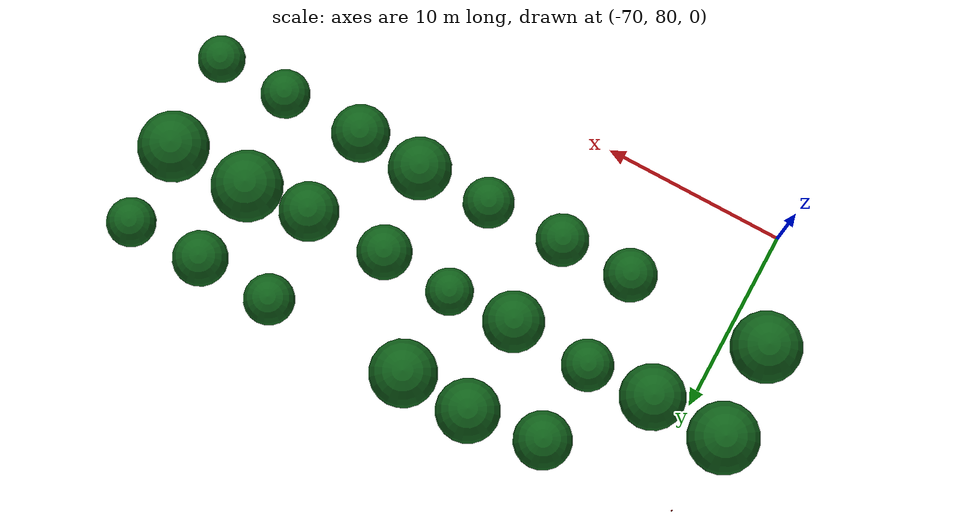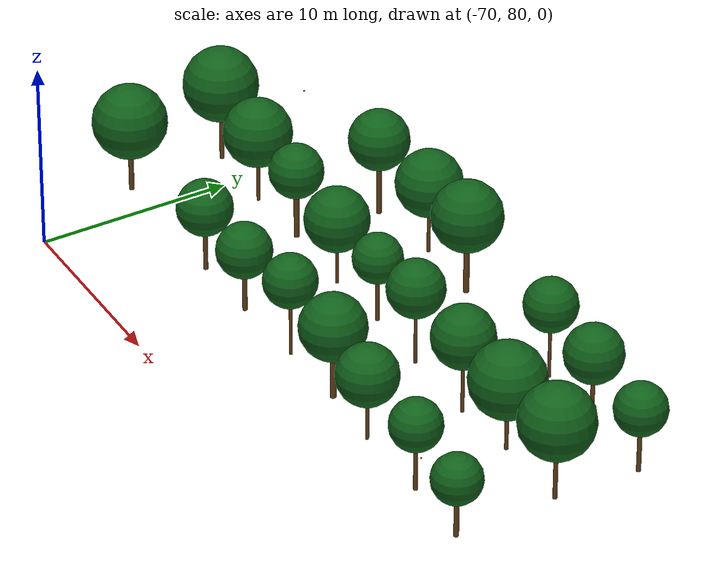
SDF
<sdf version="1.9">
 <world name="cheongsong_orchard">
  <model name="apple_tree_2093">
   <static>true</static>
   <pose>-72.01 85.86 0 0 0 0</pose>
   <link name="link">
    <collision name="trunk_col">
     <pose>0 0 1.06 0 0 0</pose>
     <geometry><cylinder><radius>0.131</radius><length>2.12</length></cylinder></geometry>
    </collision>
    <visual name="trunk_vis">
     <pose>0 0 1.06 0 0 0</pose>
     <geometry><cylinder><radius>0.131</radius><length>2.12</length></cylinder></geometry>
     <material><ambient>0.35 0.22 0.08 1</ambient><diffuse>0.45 0.30 0.12 1</diffuse></material>
    </visual>
    <collision name="canopy_col">
     <pose>0 0 4.02 0 0 0</pose>
     <geometry><sphere><radius>1.90</radius></sphere></geometry>
    </collision>
    <visual name="canopy_vis">
     <pose>0 0 4.02 0 0 0</pose>
     <geometry><sphere><radius>1.90</radius></sphere></geometry>
     <material><ambient>0.04 0.28 0.06 1</ambient><diffuse>0.06 0.38 0.10 1</diffuse></material>
    </visual>
   </link>
  </model>
  <model name="apple_tree_2095">
   <static>true</static>
   <pose>-64.10 85.81 0 0 0 0</pose>
   <link name="link">
    <collision name="trunk_col">
     <pose>0 0 1.09 0 0 0</pose>
     <geometry><cylinder><radius>0.114</radius><length>2.19</length></cylinder></geometry>
    </collision>
    <visual name="trunk_vis">
     <pose>0 0 1.09 0 0 0</pose>
     <geometry><cylinder><radius>0.114</radius><length>2.19</length></cylinder></geometry>
     <material><ambient>0.35 0.22 0.08 1</ambient><diffuse>0.45 0.30 0.12 1</diffuse></material>
    </visual>
    <collision name="canopy_col">
     <pose>0 0 3.61 0 0 0</pose>
     <geometry><sphere><radius>1.42</radius></sphere></geometry>
    </collision>
    <visual name="canopy_vis">
     <pose>0 0 3.61 0 0 0</pose>
     <geometry><sphere><radius>1.42</radius></sphere></geometry>
     <material><ambient>0.04 0.28 0.06 1</ambient><diffuse>0.06 0.38 0.10 1</diffuse></material>
    </visual>
   </link>
  </model>
  <model name="apple_tree_2096">
   <static>true</static>
   <pose>-60.15 85.83 0 0 0 0</pose>
   <link name="link">
    <collision name="trunk_col">
     <pose>0 0 1.05 0 0 0</pose>
     <geometry><cylinder><radius>0.122</radius><length>2.09</length></cylinder></geometry>
    </collision>
    <visual name="trunk_vis">
     <pose>0 0 1.05 0 0 0</pose>
     <geometry><cylinder><radius>0.122</radius><length>2.09</length></cylinder></geometry>
     <material><ambient>0.35 0.22 0.08 1</ambient><diffuse>0.45 0.30 0.12 1</diffuse></material>
    </visual>
    <collision name="canopy_col">
     <pose>0 0 3.49 0 0 0</pose>
     <geometry><sphere><radius>1.40</radius></sphere></geometry>
    </collision>
    <visual name="canopy_vis">
     <pose>0 0 3.49 0 0 0</pose>
     <geometry><sphere><radius>1.40</radius></sphere></geometry>
     <material><ambient>0.04 0.28 0.06 1</ambient><diffuse>0.06 0.38 0.10 1</diffuse></material>
    </visual>
   </link>
  </model>
  <model name="apple_tree_2097">
   <static>true</static>
   <pose>-55.91 86.00 0 0 0 0</pose>
   <link name="link">
    <collision name="trunk_col">
     <pose>0 0 1.45 0 0 0</pose>
     <geometry><cylinder><radius>0.080</radius><length>2.91</length></cylinder></geometry>
    </collision>
    <visual name="trunk_vis">
     <pose>0 0 1.45 0 0 0</pose>
     <geometry><cylinder><radius>0.080</radius><length>2.91</length></cylinder></geometry>
     <material><ambient>0.35 0.22 0.08 1</ambient><diffuse>0.45 0.30 0.12 1</diffuse></material>
    </visual>
    <collision name="canopy_col">
     <pose>0 0 4.26 0 0 0</pose>
     <geometry><sphere><radius>1.35</radius></sphere></geometry>
    </collision>
    <visual name="canopy_vis">
     <pose>0 0 4.26 0 0 0</pose>
     <geometry><sphere><radius>1.35</radius></sphere></geometry>
     <material><ambient>0.04 0.28 0.06 1</ambient><diffuse>0.06 0.38 0.10 1</diffuse></material>
    </visual>
   </link>
  </model>
  <model name="apple_tree_2098">
   <static>true</static>
   <pose>-51.93 86.07 0 0 0 0</pose>
   <link name="link">
    <collision name="trunk_col">
     <pose>0 0 1.20 0 0 0</pose>
     <geometry><cylinder><radius>0.149</radius><length>2.39</length></cylinder></geometry>
    </collision>
    <visual name="trunk_vis">
     <pose>0 0 1.20 0 0 0</pose>
     <geometry><cylinder><radius>0.149</radius><length>2.39</length></cylinder></geometry>
     <material><ambient>0.35 0.22 0.08 1</ambient><diffuse>0.45 0.30 0.12 1</diffuse></material>
    </visual>
    <collision name="canopy_col">
     <pose>0 0 4.06 0 0 0</pose>
     <geometry><sphere><radius>1.67</radius></sphere></geometry>
    </collision>
    <visual name="canopy_vis">
     <pose>0 0 4.06 0 0 0</pose>
     <geometry><sphere><radius>1.67</radius></sphere></geometry>
     <material><ambient>0.04 0.28 0.06 1</ambient><diffuse>0.06 0.38 0.10 1</diffuse></material>
    </visual>
   </link>
  </model>
  <model name="apple_tree_2099">
   <static>true</static>
   <pose>-48.32 85.85 0 0 0 0</pose>
   <link name="link">
    <collision name="trunk_col">
     <pose>0 0 1.07 0 0 0</pose>
     <geometry><cylinder><radius>0.084</radius><length>2.14</length></cylinder></geometry>
    </collision>
    <visual name="trunk_vis">
     <pose>0 0 1.07 0 0 0</pose>
     <geometry><cylinder><radius>0.084</radius><length>2.14</length></cylinder></geometry>
     <material><ambient>0.35 0.22 0.08 1</ambient><diffuse>0.45 0.30 0.12 1</diffuse></material>
    </visual>
    <collision name="canopy_col">
     <pose>0 0 3.69 0 0 0</pose>
     <geometry><sphere><radius>1.54</radius></sphere></geometry>
    </collision>
    <visual name="canopy_vis">
     <pose>0 0 3.69 0 0 0</pose>
     <geometry><sphere><radius>1.54</radius></sphere></geometry>
     <material><ambient>0.04 0.28 0.06 1</ambient><diffuse>0.06 0.38 0.10 1</diffuse></material>
    </visual>
   </link>
  </model>
  <model name="apple_tree_2100">
   <static>true</static>
   <pose>-43.90 85.87 0 0 0 0</pose>
   <link name="link">
    <collision name="trunk_col">
     <pose>0 0 1.21 0 0 0</pose>
     <geometry><cylinder><radius>0.107</radius><length>2.41</length></cylinder></geometry>
    </collision>
    <visual name="trunk_vis">
     <pose>0 0 1.21 0 0 0</pose>
     <geometry><cylinder><radius>0.107</radius><length>2.41</length></cylinder></geometry>
     <material><ambient>0.35 0.22 0.08 1</ambient><diffuse>0.45 0.30 0.12 1</diffuse></material>
    </visual>
    <collision name="canopy_col">
     <pose>0 0 3.71 0 0 0</pose>
     <geometry><sphere><radius>1.30</radius></sphere></geometry>
    </collision>
    <visual name="canopy_vis">
     <pose>0 0 3.71 0 0 0</pose>
     <geometry><sphere><radius>1.30</radius></sphere></geometry>
     <material><ambient>0.04 0.28 0.06 1</ambient><diffuse>0.06 0.38 0.10 1</diffuse></material>
    </visual>
   </link>
  </model>
  <model name="apple_tree_2101">
   <static>true</static>
   <pose>-40.04 85.76 0 0 0 0</pose>
   <link name="link">
    <collision name="trunk_col">
     <pose>0 0 0.99 0 0 0</pose>
     <geometry><cylinder><radius>0.126</radius><length>1.99</length></cylinder></geometry>
    </collision>
    <visual name="trunk_vis">
     <pose>0 0 0.99 0 0 0</pose>
     <geometry><cylinder><radius>0.126</radius><length>1.99</length></cylinder></geometry>
     <material><ambient>0.35 0.22 0.08 1</ambient><diffuse>0.45 0.30 0.12 1</diffuse></material>
    </visual>
    <collision name="canopy_col">
     <pose>0 0 3.24 0 0 0</pose>
     <geometry><sphere><radius>1.25</radius></sphere></geometry>
    </collision>
    <visual name="canopy_vis">
     <pose>0 0 3.24 0 0 0</pose>
     <geometry><sphere><radius>1.25</radius></sphere></geometry>
     <material><ambient>0.04 0.28 0.06 1</ambient><diffuse>0.06 0.38 0.10 1</diffuse></material>
    </visual>
   </link>
  </model>
  <model name="apple_tree_2149">
   <static>true</static>
   <pose>-72.21 91.08 0 0 0 0</pose>
   <link name="link">
    <collision name="trunk_col">
     <pose>0 0 1.26 0 0 0</pose>
     <geometry><cylinder><radius>0.118</radius><length>2.51</length></cylinder></geometry>
    </collision>
    <visual name="trunk_vis">
     <pose>0 0 1.26 0 0 0</pose>
     <geometry><cylinder><radius>0.118</radius><length>2.51</length></cylinder></geometry>
     <material><ambient>0.35 0.22 0.08 1</ambient><diffuse>0.45 0.30 0.12 1</diffuse></material>
    </visual>
    <collision name="canopy_col">
     <pose>0 0 4.43 0 0 0</pose>
     <geometry><sphere><radius>1.92</radius></sphere></geometry>
    </collision>
    <visual name="canopy_vis">
     <pose>0 0 4.43 0 0 0</pose>
     <geometry><sphere><radius>1.92</radius></sphere></geometry>
     <material><ambient>0.04 0.28 0.06 1</ambient><diffuse>0.06 0.38 0.10 1</diffuse></material>
    </visual>
   </link>
  </model>
  <model name="apple_tree_2150">
   <static>true</static>
   <pose>-68.04 90.89 0 0 0 0</pose>
   <link name="link">
    <collision name="trunk_col">
     <pose>0 0 1.13 0 0 0</pose>
     <geometry><cylinder><radius>0.091</radius><length>2.27</length></cylinder></geometry>
    </collision>
    <visual name="trunk_vis">
     <pose>0 0 1.13 0 0 0</pose>
     <geometry><cylinder><radius>0.091</radius><length>2.27</length></cylinder></geometry>
     <material><ambient>0.35 0.22 0.08 1</ambient><diffuse>0.45 0.30 0.12 1</diffuse></material>
    </visual>
    <collision name="canopy_col">
     <pose>0 0 4.01 0 0 0</pose>
     <geometry><sphere><radius>1.75</radius></sphere></geometry>
    </collision>
    <visual name="canopy_vis">
     <pose>0 0 4.01 0 0 0</pose>
     <geometry><sphere><radius>1.75</radius></sphere></geometry>
     <material><ambient>0.04 0.28 0.06 1</ambient><diffuse>0.06 0.38 0.10 1</diffuse></material>
    </visual>
   </link>
  </model>
  <model name="apple_tree_2151">
   <static>true</static>
   <pose>-64.33 91.00 0 0 0 0</pose>
   <link name="link">
    <collision name="trunk_col">
     <pose>0 0 1.25 0 0 0</pose>
     <geometry><cylinder><radius>0.139</radius><length>2.49</length></cylinder></geometry>
    </collision>
    <visual name="trunk_vis">
     <pose>0 0 1.25 0 0 0</pose>
     <geometry><cylinder><radius>0.139</radius><length>2.49</length></cylinder></geometry>
     <material><ambient>0.35 0.22 0.08 1</ambient><diffuse>0.45 0.30 0.12 1</diffuse></material>
    </visual>
    <collision name="canopy_col">
     <pose>0 0 3.87 0 0 0</pose>
     <geometry><sphere><radius>1.38</radius></sphere></geometry>
    </collision>
    <visual name="canopy_vis">
     <pose>0 0 3.87 0 0 0</pose>
     <geometry><sphere><radius>1.38</radius></sphere></geometry>
     <material><ambient>0.04 0.28 0.06 1</ambient><diffuse>0.06 0.38 0.10 1</diffuse></material>
    </visual>
   </link>
  </model>
  <model name="apple_tree_2152">
   <static>true</static>
   <pose>-59.92 90.79 0 0 0 0</pose>
   <link name="link">
    <collision name="trunk_col">
     <pose>0 0 1.05 0 0 0</pose>
     <geometry><cylinder><radius>0.087</radius><length>2.10</length></cylinder></geometry>
    </collision>
    <visual name="trunk_vis">
     <pose>0 0 1.05 0 0 0</pose>
     <geometry><cylinder><radius>0.087</radius><length>2.10</length></cylinder></geometry>
     <material><ambient>0.35 0.22 0.08 1</ambient><diffuse>0.45 0.30 0.12 1</diffuse></material>
    </visual>
    <collision name="canopy_col">
     <pose>0 0 3.73 0 0 0</pose>
     <geometry><sphere><radius>1.63</radius></sphere></geometry>
    </collision>
    <visual name="canopy_vis">
     <pose>0 0 3.73 0 0 0</pose>
     <geometry><sphere><radius>1.63</radius></sphere></geometry>
     <material><ambient>0.04 0.28 0.06 1</ambient><diffuse>0.06 0.38 0.10 1</diffuse></material>
    </visual>
   </link>
  </model>
  <model name="apple_tree_2153">
   <static>true</static>
   <pose>-56.27 90.96 0 0 0 0</pose>
   <link name="link">
    <collision name="trunk_col">
     <pose>0 0 1.18 0 0 0</pose>
     <geometry><cylinder><radius>0.103</radius><length>2.36</length></cylinder></geometry>
    </collision>
    <visual name="trunk_vis">
     <pose>0 0 1.18 0 0 0</pose>
     <geometry><cylinder><radius>0.103</radius><length>2.36</length></cylinder></geometry>
     <material><ambient>0.35 0.22 0.08 1</ambient><diffuse>0.45 0.30 0.12 1</diffuse></material>
    </visual>
    <collision name="canopy_col">
     <pose>0 0 3.62 0 0 0</pose>
     <geometry><sphere><radius>1.26</radius></sphere></geometry>
    </collision>
    <visual name="canopy_vis">
     <pose>0 0 3.62 0 0 0</pose>
     <geometry><sphere><radius>1.26</radius></sphere></geometry>
     <material><ambient>0.04 0.28 0.06 1</ambient><diffuse>0.06 0.38 0.10 1</diffuse></material>
    </visual>
   </link>
  </model>
  <model name="apple_tree_2154">
   <static>true</static>
   <pose>-52.39 90.80 0 0 0 0</pose>
   <link name="link">
    <collision name="trunk_col">
     <pose>0 0 1.43 0 0 0</pose>
     <geometry><cylinder><radius>0.085</radius><length>2.86</length></cylinder></geometry>
    </collision>
    <visual name="trunk_vis">
     <pose>0 0 1.43 0 0 0</pose>
     <geometry><cylinder><radius>0.085</radius><length>2.86</length></cylinder></geometry>
     <material><ambient>0.35 0.22 0.08 1</ambient><diffuse>0.45 0.30 0.12 1</diffuse></material>
    </visual>
    <collision name="canopy_col">
     <pose>0 0 4.31 0 0 0</pose>
     <geometry><sphere><radius>1.45</radius></sphere></geometry>
    </collision>
    <visual name="canopy_vis">
     <pose>0 0 4.31 0 0 0</pose>
     <geometry><sphere><radius>1.45</radius></sphere></geometry>
     <material><ambient>0.04 0.28 0.06 1</ambient><diffuse>0.06 0.38 0.10 1</diffuse></material>
    </visual>
   </link>
  </model>
  <model name="apple_tree_2155">
   <static>true</static>
   <pose>-47.96 90.77 0 0 0 0</pose>
   <link name="link">
    <collision name="trunk_col">
     <pose>0 0 1.37 0 0 0</pose>
     <geometry><cylinder><radius>0.091</radius><length>2.74</length></cylinder></geometry>
    </collision>
    <visual name="trunk_vis">
     <pose>0 0 1.37 0 0 0</pose>
     <geometry><cylinder><radius>0.091</radius><length>2.74</length></cylinder></geometry>
     <material><ambient>0.35 0.22 0.08 1</ambient><diffuse>0.45 0.30 0.12 1</diffuse></material>
    </visual>
    <collision name="canopy_col">
     <pose>0 0 4.32 0 0 0</pose>
     <geometry><sphere><radius>1.58</radius></sphere></geometry>
    </collision>
    <visual name="canopy_vis">
     <pose>0 0 4.32 0 0 0</pose>
     <geometry><sphere><radius>1.58</radius></sphere></geometry>
     <material><ambient>0.04 0.28 0.06 1</ambient><diffuse>0.06 0.38 0.10 1</diffuse></material>
    </visual>
   </link>
  </model>
  <model name="apple_tree_2156">
   <static>true</static>
   <pose>-44.47 91.07 0 0 0 0</pose>
   <link name="link">
    <collision name="trunk_col">
     <pose>0 0 1.03 0 0 0</pose>
     <geometry><cylinder><radius>0.096</radius><length>2.07</length></cylinder></geometry>
    </collision>
    <visual name="trunk_vis">
     <pose>0 0 1.03 0 0 0</pose>
     <geometry><cylinder><radius>0.096</radius><length>2.07</length></cylinder></geometry>
     <material><ambient>0.35 0.22 0.08 1</ambient><diffuse>0.45 0.30 0.12 1</diffuse></material>
    </visual>
    <collision name="canopy_col">
     <pose>0 0 3.97 0 0 0</pose>
     <geometry><sphere><radius>1.90</radius></sphere></geometry>
    </collision>
    <visual name="canopy_vis">
     <pose>0 0 3.97 0 0 0</pose>
     <geometry><sphere><radius>1.90</radius></sphere></geometry>
     <material><ambient>0.04 0.28 0.06 1</ambient><diffuse>0.06 0.38 0.10 1</diffuse></material>
    </visual>
   </link>
  </model>
  <model name="apple_tree_2157">
   <static>true</static>
   <pose>-40.19 91.09 0 0 0 0</pose>
   <link name="link">
    <collision name="trunk_col">
     <pose>0 0 1.26 0 0 0</pose>
     <geometry><cylinder><radius>0.108</radius><length>2.52</length></cylinder></geometry>
    </collision>
    <visual name="trunk_vis">
     <pose>0 0 1.26 0 0 0</pose>
     <geometry><cylinder><radius>0.108</radius><length>2.52</length></cylinder></geometry>
     <material><ambient>0.35 0.22 0.08 1</ambient><diffuse>0.45 0.30 0.12 1</diffuse></material>
    </visual>
    <collision name="canopy_col">
     <pose>0 0 4.40 0 0 0</pose>
     <geometry><sphere><radius>1.88</radius></sphere></geometry>
    </collision>
    <visual name="canopy_vis">
     <pose>0 0 4.40 0 0 0</pose>
     <geometry><sphere><radius>1.88</radius></sphere></geometry>
     <material><ambient>0.04 0.28 0.06 1</ambient><diffuse>0.06 0.38 0.10 1</diffuse></material>
    </visual>
   </link>
  </model>
  <model name="apple_tree_2192">
   <static>true</static>
   <pose>-64.11 95.53 0 0 0 0</pose>
   <link name="link">
    <collision name="trunk_col">
     <pose>0 0 1.39 0 0 0</pose>
     <geometry><cylinder><radius>0.135</radius><length>2.78</length></cylinder></geometry>
    </collision>
    <visual name="trunk_vis">
     <pose>0 0 1.39 0 0 0</pose>
     <geometry><cylinder><radius>0.135</radius><length>2.78</length></cylinder></geometry>
     <material><ambient>0.35 0.22 0.08 1</ambient><diffuse>0.45 0.30 0.12 1</diffuse></material>
    </visual>
    <collision name="canopy_col">
     <pose>0 0 4.33 0 0 0</pose>
     <geometry><sphere><radius>1.55</radius></sphere></geometry>
    </collision>
    <visual name="canopy_vis">
     <pose>0 0 4.33 0 0 0</pose>
     <geometry><sphere><radius>1.55</radius></sphere></geometry>
     <material><ambient>0.04 0.28 0.06 1</ambient><diffuse>0.06 0.38 0.10 1</diffuse></material>
    </visual>
   </link>
  </model>
  <model name="apple_tree_2193">
   <static>true</static>
   <pose>-60.01 95.98 0 0 0 0</pose>
   <link name="link">
    <collision name="trunk_col">
     <pose>0 0 1.17 0 0 0</pose>
     <geometry><cylinder><radius>0.092</radius><length>2.34</length></cylinder></geometry>
    </collision>
    <visual name="trunk_vis">
     <pose>0 0 1.17 0 0 0</pose>
     <geometry><cylinder><radius>0.092</radius><length>2.34</length></cylinder></geometry>
     <material><ambient>0.35 0.22 0.08 1</ambient><diffuse>0.45 0.30 0.12 1</diffuse></material>
    </visual>
    <collision name="canopy_col">
     <pose>0 0 4.04 0 0 0</pose>
     <geometry><sphere><radius>1.70</radius></sphere></geometry>
    </collision>
    <visual name="canopy_vis">
     <pose>0 0 4.04 0 0 0</pose>
     <geometry><sphere><radius>1.70</radius></sphere></geometry>
     <material><ambient>0.04 0.28 0.06 1</ambient><diffuse>0.06 0.38 0.10 1</diffuse></material>
    </visual>
   </link>
  </model>
  <model name="apple_tree_2194">
   <static>true</static>
   <pose>-56.20 95.86 0 0 0 0</pose>
   <link name="link">
    <collision name="trunk_col">
     <pose>0 0 1.31 0 0 0</pose>
     <geometry><cylinder><radius>0.148</radius><length>2.63</length></cylinder></geometry>
    </collision>
    <visual name="trunk_vis">
     <pose>0 0 1.31 0 0 0</pose>
     <geometry><cylinder><radius>0.148</radius><length>2.63</length></cylinder></geometry>
     <material><ambient>0.35 0.22 0.08 1</ambient><diffuse>0.45 0.30 0.12 1</diffuse></material>
    </visual>
    <collision name="canopy_col">
     <pose>0 0 4.43 0 0 0</pose>
     <geometry><sphere><radius>1.80</radius></sphere></geometry>
    </collision>
    <visual name="canopy_vis">
     <pose>0 0 4.43 0 0 0</pose>
     <geometry><sphere><radius>1.80</radius></sphere></geometry>
     <material><ambient>0.04 0.28 0.06 1</ambient><diffuse>0.06 0.38 0.10 1</diffuse></material>
    </visual>
   </link>
  </model>
  <model name="apple_tree_2196">
   <static>true</static>
   <pose>-48.30 95.73 0 0 0 0</pose>
   <link name="link">
    <collision name="trunk_col">
     <pose>0 0 1.41 0 0 0</pose>
     <geometry><cylinder><radius>0.083</radius><length>2.83</length></cylinder></geometry>
    </collision>
    <visual name="trunk_vis">
     <pose>0 0 1.41 0 0 0</pose>
     <geometry><cylinder><radius>0.083</radius><length>2.83</length></cylinder></geometry>
     <material><ambient>0.35 0.22 0.08 1</ambient><diffuse>0.45 0.30 0.12 1</diffuse></material>
    </visual>
    <collision name="canopy_col">
     <pose>0 0 4.18 0 0 0</pose>
     <geometry><sphere><radius>1.35</radius></sphere></geometry>
    </collision>
    <visual name="canopy_vis">
     <pose>0 0 4.18 0 0 0</pose>
     <geometry><sphere><radius>1.35</radius></sphere></geometry>
     <material><ambient>0.04 0.28 0.06 1</ambient><diffuse>0.06 0.38 0.10 1</diffuse></material>
    </visual>
   </link>
  </model>
  <model name="apple_tree_2197">
   <static>true</static>
   <pose>-44.15 95.52 0 0 0 0</pose>
   <link name="link">
    <collision name="trunk_col">
     <pose>0 0 1.30 0 0 0</pose>
     <geometry><cylinder><radius>0.106</radius><length>2.60</length></cylinder></geometry>
    </collision>
    <visual name="trunk_vis">
     <pose>0 0 1.30 0 0 0</pose>
     <geometry><cylinder><radius>0.106</radius><length>2.60</length></cylinder></geometry>
     <material><ambient>0.35 0.22 0.08 1</ambient><diffuse>0.45 0.30 0.12 1</diffuse></material>
    </visual>
    <collision name="canopy_col">
     <pose>0 0 4.07 0 0 0</pose>
     <geometry><sphere><radius>1.47</radius></sphere></geometry>
    </collision>
    <visual name="canopy_vis">
     <pose>0 0 4.07 0 0 0</pose>
     <geometry><sphere><radius>1.47</radius></sphere></geometry>
     <material><ambient>0.04 0.28 0.06 1</ambient><diffuse>0.06 0.38 0.10 1</diffuse></material>
    </visual>
   </link>
  </model>
  <model name="apple_tree_2198">
   <static>true</static>
   <pose>-40.04 95.51 0 0 0 0</pose>
   <link name="link">
    <collision name="trunk_col">
     <pose>0 0 1.13 0 0 0</pose>
     <geometry><cylinder><radius>0.112</radius><length>2.26</length></cylinder></geometry>
    </collision>
    <visual name="trunk_vis">
     <pose>0 0 1.13 0 0 0</pose>
     <geometry><cylinder><radius>0.112</radius><length>2.26</length></cylinder></geometry>
     <material><ambient>0.35 0.22 0.08 1</ambient><diffuse>0.45 0.30 0.12 1</diffuse></material>
    </visual>
    <collision name="canopy_col">
     <pose>0 0 3.56 0 0 0</pose>
     <geometry><sphere><radius>1.31</radius></sphere></geometry>
    </collision>
    <visual name="canopy_vis">
     <pose>0 0 3.56 0 0 0</pose>
     <geometry><sphere><radius>1.31</radius></sphere></geometry>
     <material><ambient>0.04 0.28 0.06 1</ambient><diffuse>0.06 0.38 0.10 1</diffuse></material>
    </visual>
   </link>
  </model>
  <model name="apple_2100_0">
   <static>true</static>
   <pose>-43.28 86.47 2.80 0 0 0</pose>
   <link name="link">
    <visual name="visual">
     <geometry><sphere><radius>0.04</radius></sphere></geometry>
     <material><ambient>0.7 0.05 0.02 1</ambient><diffuse>0.9 0.10 0.05 1</diffuse></material>
    </visual>
   </link>
  </model>
  <model name="apple_2100_1">
   <static>true</static>
   <pose>-43.56 85.96 1.99 0 0 0</pose>
   <link name="link">
    <visual name="visual">
     <geometry><sphere><radius>0.04</radius></sphere></geometry>
     <material><ambient>0.7 0.05 0.02 1</ambient><diffuse>0.9 0.10 0.05 1</diffuse></material>
    </visual>
   </link>
  </model>
  <model name="apple_2100_2">
   <static>true</static>
   <pose>-44.28 85.78 1.98 0 0 0</pose>
   <link name="link">
    <visual name="visual">
     <geometry><sphere><radius>0.04</radius></sphere></geometry>
     <material><ambient>0.7 0.05 0.02 1</ambient><diffuse>0.9 0.10 0.05 1</diffuse></material>
    </visual>
   </link>
  </model>
  <model name="apple_2150_0">
   <static>true</static>
   <pose>-68.93 90.33 2.56 0 0 0</pose>
   <link name="link">
    <visual name="visual">
     <geometry><sphere><radius>0.04</radius></sphere></geometry>
     <material><ambient>0.7 0.05 0.02 1</ambient><diffuse>0.9 0.10 0.05 1</diffuse></material>
    </visual>
   </link>
  </model>
  <model name="apple_2150_1">
   <static>true</static>
   <pose>-67.94 90.33 2.57 0 0 0</pose>
   <link name="link">
    <visual name="visual">
     <geometry><sphere><radius>0.04</radius></sphere></geometry>
     <material><ambient>0.7 0.05 0.02 1</ambient><diffuse>0.9 0.10 0.05 1</diffuse></material>
    </visual>
   </link>
  </model>
  <model name="apple_2150_2">
   <static>true</static>
   <pose>-68.59 91.13 2.72 0 0 0</pose>
   <link name="link">
    <visual name="visual">
     <geometry><sphere><radius>0.04</radius></sphere></geometry>
     <material><ambient>0.7 0.05 0.02 1</ambient><diffuse>0.9 0.10 0.05 1</diffuse></material>
    </visual>
   </link>
  </model>
  <model name="apple_2150_3">
   <static>true</static>
   <pose>-68.47 92.19 2.78 0 0 0</pose>
   <link name="link">
    <visual name="visual">
     <geometry><sphere><radius>0.04</radius></sphere></geometry>
     <material><ambient>0.7 0.05 0.02 1</ambient><diffuse>0.9 0.10 0.05 1</diffuse></material>
    </visual>
   </link>
  </model>
  <model name="apple_2150_4">
   <static>true</static>
   <pose>-67.14 91.19 2.55 0 0 0</pose>
   <link name="link">
    <visual name="visual">
     <geometry><sphere><radius>0.04</radius></sphere></geometry>
     <material><ambient>0.7 0.05 0.02 1</ambient><diffuse>0.9 0.10 0.05 1</diffuse></material>
    </visual>
   </link>
  </model>
  <model name="apple_2190_3">
   <static>true</static>
   <pose>-71.65 95.51 2.91 0 0 0</pose>
   <link name="link">
    <visual name="visual">
     <geometry><sphere><radius>0.04</radius></sphere></geometry>
     <material><ambient>0.7 0.05 0.02 1</ambient><diffuse>0.9 0.10 0.05 1</diffuse></material>
    </visual>
   </link>
  </model>
 </world>
</sdf>
